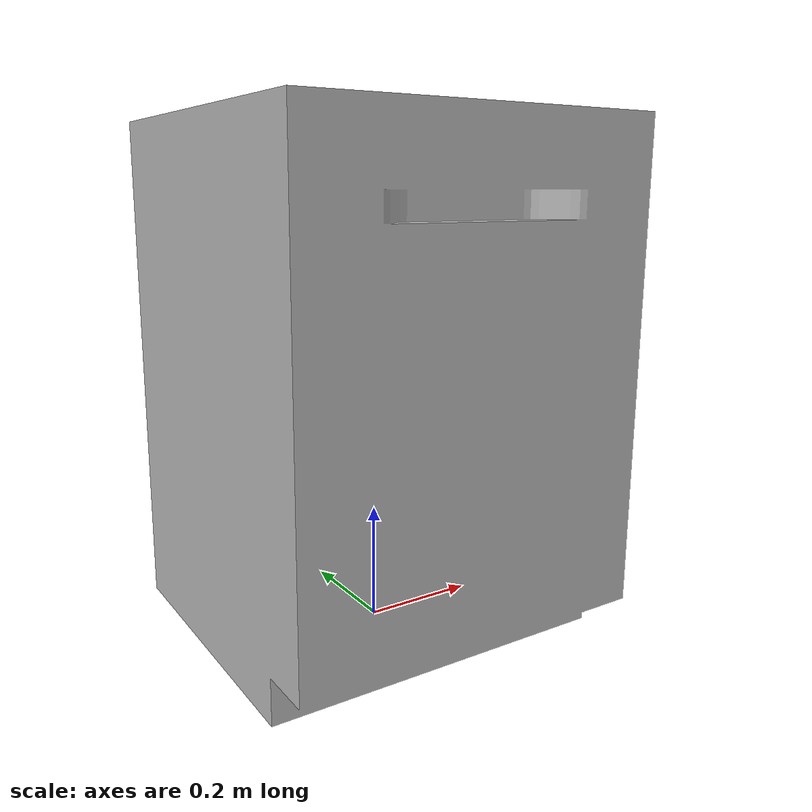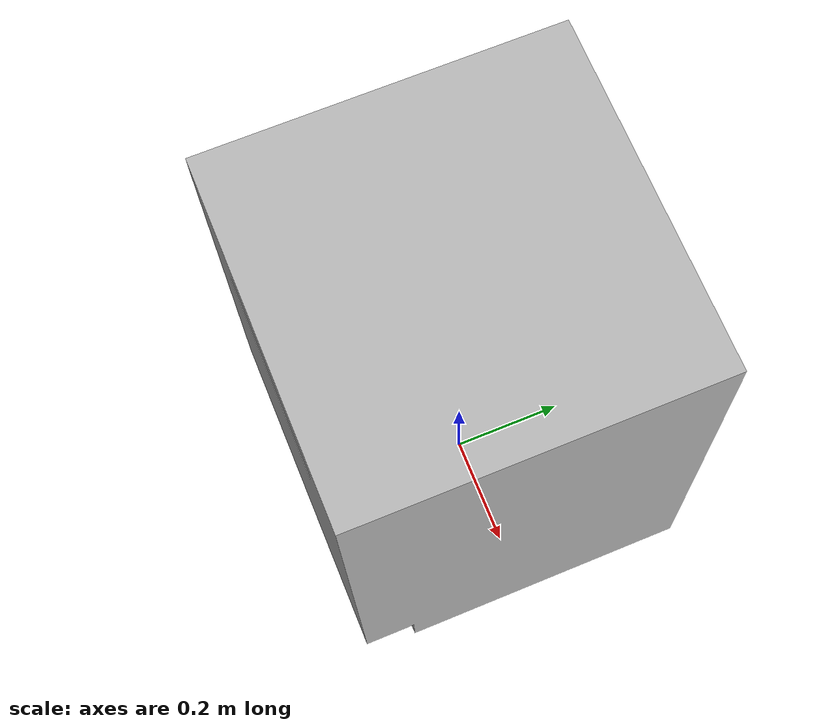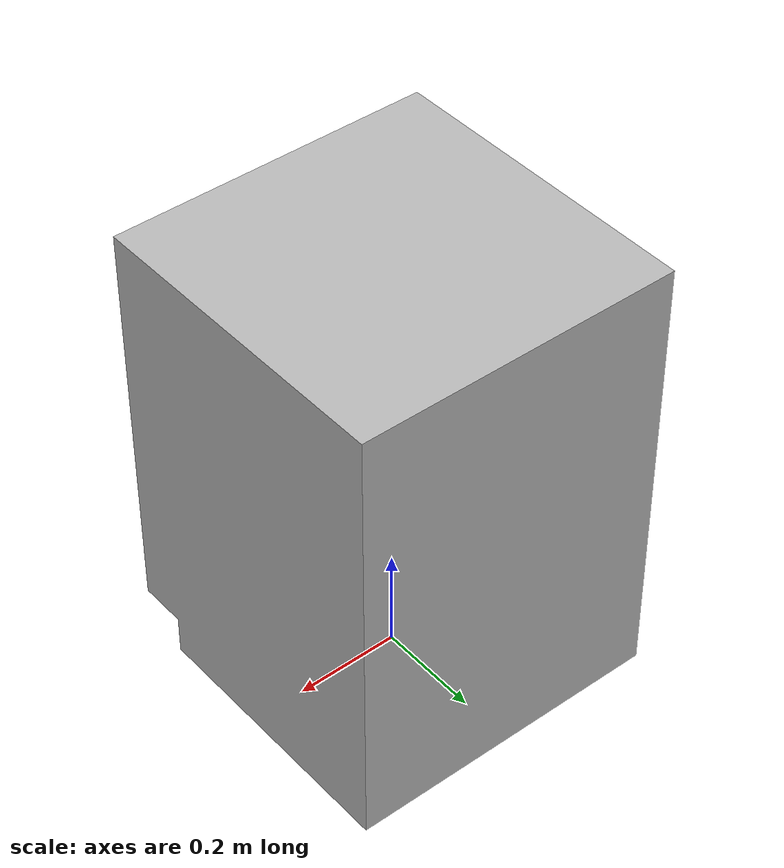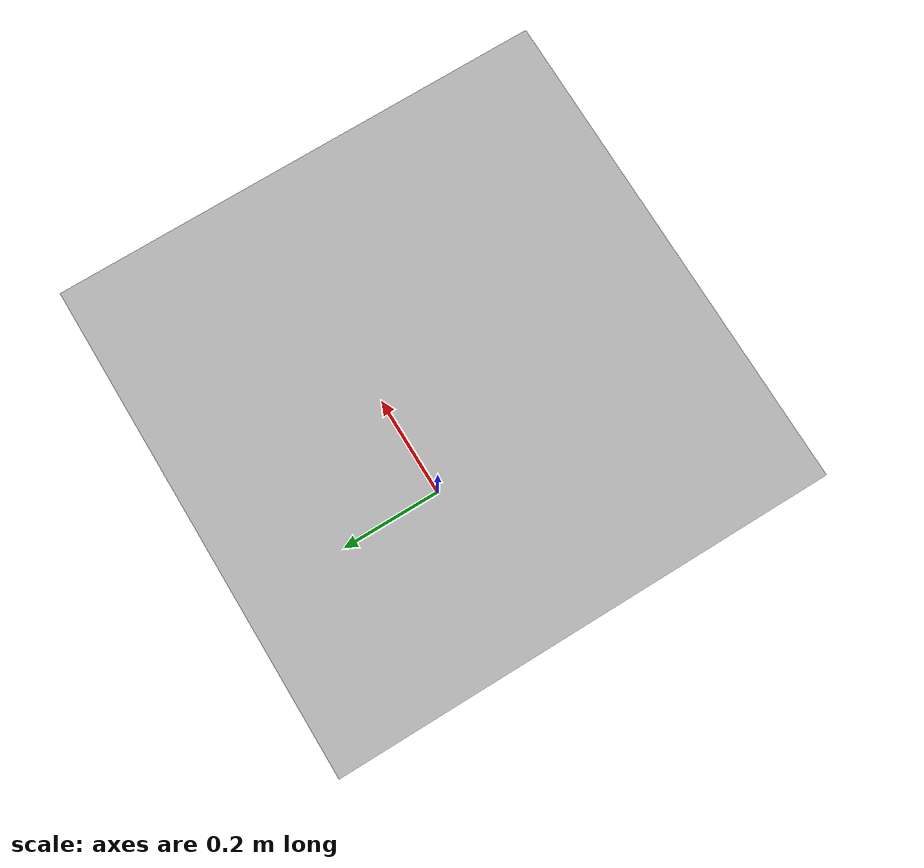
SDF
<sdf version="1.5">
  <model name="dishwasher">
    <static>true</static>
    <link name="link">
      <collision name="collision">
        <pose>-0.002041 0.002974 0.423381 0 0 0</pose>
        <geometry>
          <box>
            <size>0.614240 0.639467 0.872373</size>
          </box>
        </geometry>
      </collision>
      <visual name="visual">
        <geometry>
          <mesh>
            <uri>model://dishwasher/meshes/dishwasher.obj</uri>
            <scale>0.01 0.01 0.01</scale>
          </mesh>
        </geometry>
      </visual>
    </link>
  </model>
</sdf>
